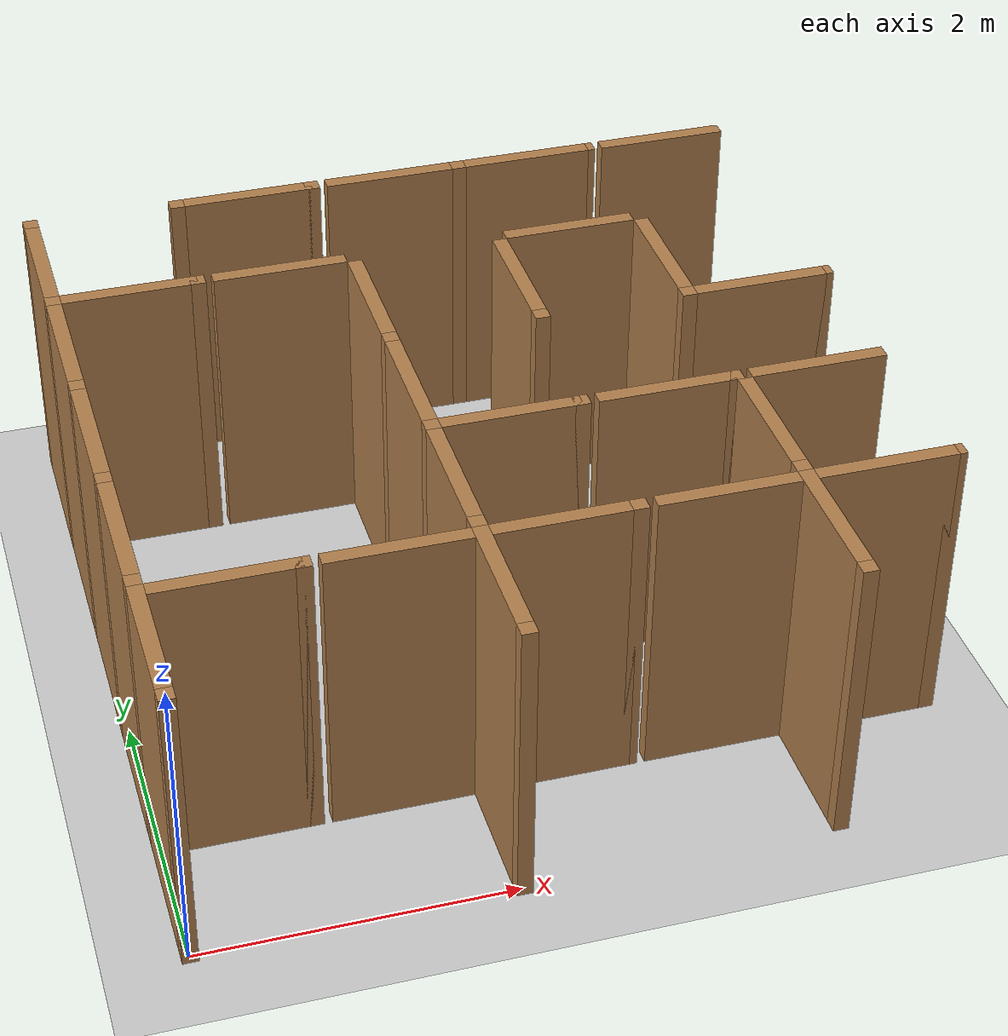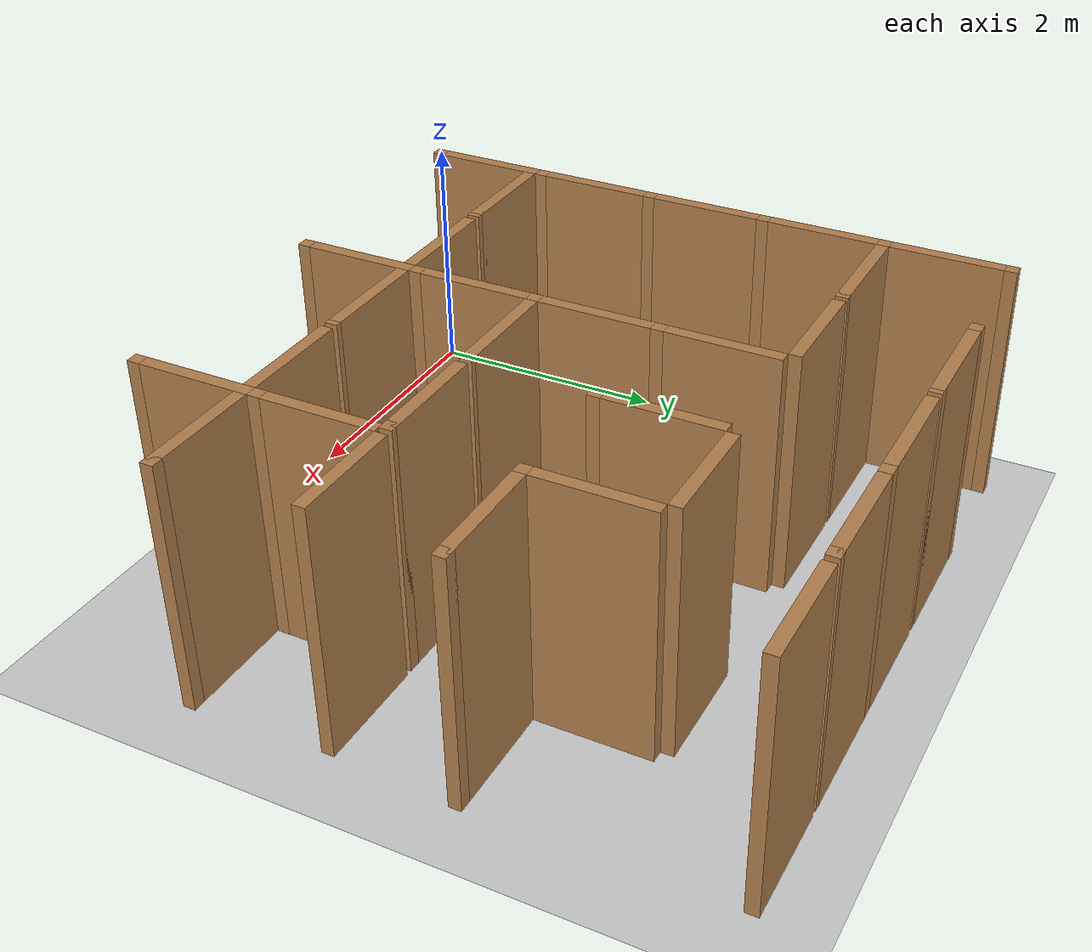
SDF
<sdf version="1.6">
 <world name="default">
  <include><uri>model://sun</uri></include>
  <model name="ground_plane">
   <static>true</static>
   <link name="link">
    <collision name="collision"><geometry><plane><size>12.0 12.0</size></plane></geometry></collision>
    <visual name="visual">
     <cast_shadows>false</cast_shadows>
     <geometry><plane><size>12.0 12.0</size></plane></geometry>
     <material>
      <script><uri>file://media/materials/scripts/gazebo.material</uri><name>Gazebo/Grey</name></script>
     </material>
    </visual>
   </link>
   <pose>6.0 6.0 0 0 0 0</pose>
  </model>
  <model name="vwall_0_0">
   <pose>0.0 0.5 1.0 0 0 0</pose>
   <link name="link">
    <collision name="collision"><geometry><box><size>0.1 0.9 2</size></box></geometry></collision>
    <visual name="visual">
     <geometry><box><size>0.1 0.9 2</size></box></geometry>
     <material>
      <script><uri>file://media/materials/scripts/gazebo.material</uri><name>Gazebo/Wood</name></script>
     </material>
    </visual>
   </link>
  </model>
  <model name="joint_0.0_0.0">
   <pose>0.0 0.0 1.0 0 0 0</pose>
   <link name="link">
    <collision name="collision"><geometry><box><size>0.1 0.1 2</size></box></geometry></collision>
    <visual name="visual">
     <geometry><box><size>0.1 0.1 2</size></box></geometry>
     <material>
      <script><uri>file://media/materials/scripts/gazebo.material</uri><name>Gazebo/Wood</name></script>
     </material>
    </visual>
   </link>
  </model>
  <model name="vwall_0_2">
   <pose>2.0 0.5 1.0 0 0 0</pose>
   <link name="link">
    <collision name="collision"><geometry><box><size>0.1 0.9 2</size></box></geometry></collision>
    <visual name="visual">
     <geometry><box><size>0.1 0.9 2</size></box></geometry>
     <material>
      <script><uri>file://media/materials/scripts/gazebo.material</uri><name>Gazebo/Wood</name></script>
     </material>
    </visual>
   </link>
  </model>
  <model name="joint_2.0_0.0">
   <pose>2.0 0.0 1.0 0 0 0</pose>
   <link name="link">
    <collision name="collision"><geometry><box><size>0.1 0.1 2</size></box></geometry></collision>
    <visual name="visual">
     <geometry><box><size>0.1 0.1 2</size></box></geometry>
     <material>
      <script><uri>file://media/materials/scripts/gazebo.material</uri><name>Gazebo/Wood</name></script>
     </material>
    </visual>
   </link>
  </model>
  <model name="vwall_0_4">
   <pose>4.0 0.5 1.0 0 0 0</pose>
   <link name="link">
    <collision name="collision"><geometry><box><size>0.1 0.9 2</size></box></geometry></collision>
    <visual name="visual">
     <geometry><box><size>0.1 0.9 2</size></box></geometry>
     <material>
      <script><uri>file://media/materials/scripts/gazebo.material</uri><name>Gazebo/Wood</name></script>
     </material>
    </visual>
   </link>
  </model>
  <model name="joint_4.0_0.0">
   <pose>4.0 0.0 1.0 0 0 0</pose>
   <link name="link">
    <collision name="collision"><geometry><box><size>0.1 0.1 2</size></box></geometry></collision>
    <visual name="visual">
     <geometry><box><size>0.1 0.1 2</size></box></geometry>
     <material>
      <script><uri>file://media/materials/scripts/gazebo.material</uri><name>Gazebo/Wood</name></script>
     </material>
    </visual>
   </link>
  </model>
  <model name="vwall_1_0">
   <pose>0.0 1.5 1.0 0 0 0</pose>
   <link name="link">
    <collision name="collision"><geometry><box><size>0.1 0.9 2</size></box></geometry></collision>
    <visual name="visual">
     <geometry><box><size>0.1 0.9 2</size></box></geometry>
     <material>
      <script><uri>file://media/materials/scripts/gazebo.material</uri><name>Gazebo/Wood</name></script>
     </material>
    </visual>
   </link>
  </model>
  <model name="joint_0.0_1.0">
   <pose>0.0 1.0 1.0 0 0 0</pose>
   <link name="link">
    <collision name="collision"><geometry><box><size>0.1 0.1 2</size></box></geometry></collision>
    <visual name="visual">
     <geometry><box><size>0.1 0.1 2</size></box></geometry>
     <material>
      <script><uri>file://media/materials/scripts/gazebo.material</uri><name>Gazebo/Wood</name></script>
     </material>
    </visual>
   </link>
  </model>
  <model name="vwall_1_2">
   <pose>2.0 1.5 1.0 0 0 0</pose>
   <link name="link">
    <collision name="collision"><geometry><box><size>0.1 0.9 2</size></box></geometry></collision>
    <visual name="visual">
     <geometry><box><size>0.1 0.9 2</size></box></geometry>
     <material>
      <script><uri>file://media/materials/scripts/gazebo.material</uri><name>Gazebo/Wood</name></script>
     </material>
    </visual>
   </link>
  </model>
  <model name="joint_2.0_1.0">
   <pose>2.0 1.0 1.0 0 0 0</pose>
   <link name="link">
    <collision name="collision"><geometry><box><size>0.1 0.1 2</size></box></geometry></collision>
    <visual name="visual">
     <geometry><box><size>0.1 0.1 2</size></box></geometry>
     <material>
      <script><uri>file://media/materials/scripts/gazebo.material</uri><name>Gazebo/Wood</name></script>
     </material>
    </visual>
   </link>
  </model>
  <model name="vwall_1_4">
   <pose>4.0 1.5 1.0 0 0 0</pose>
   <link name="link">
    <collision name="collision"><geometry><box><size>0.1 0.9 2</size></box></geometry></collision>
    <visual name="visual">
     <geometry><box><size>0.1 0.9 2</size></box></geometry>
     <material>
      <script><uri>file://media/materials/scripts/gazebo.material</uri><name>Gazebo/Wood</name></script>
     </material>
    </visual>
   </link>
  </model>
  <model name="joint_4.0_1.0">
   <pose>4.0 1.0 1.0 0 0 0</pose>
   <link name="link">
    <collision name="collision"><geometry><box><size>0.1 0.1 2</size></box></geometry></collision>
    <visual name="visual">
     <geometry><box><size>0.1 0.1 2</size></box></geometry>
     <material>
      <script><uri>file://media/materials/scripts/gazebo.material</uri><name>Gazebo/Wood</name></script>
     </material>
    </visual>
   </link>
  </model>
  <model name="vwall_2_0">
   <pose>0.0 2.5 1.0 0 0 0</pose>
   <link name="link">
    <collision name="collision"><geometry><box><size>0.1 0.9 2</size></box></geometry></collision>
    <visual name="visual">
     <geometry><box><size>0.1 0.9 2</size></box></geometry>
     <material>
      <script><uri>file://media/materials/scripts/gazebo.material</uri><name>Gazebo/Wood</name></script>
     </material>
    </visual>
   </link>
  </model>
  <model name="joint_0.0_2.0">
   <pose>0.0 2.0 1.0 0 0 0</pose>
   <link name="link">
    <collision name="collision"><geometry><box><size>0.1 0.1 2</size></box></geometry></collision>
    <visual name="visual">
     <geometry><box><size>0.1 0.1 2</size></box></geometry>
     <material>
      <script><uri>file://media/materials/scripts/gazebo.material</uri><name>Gazebo/Wood</name></script>
     </material>
    </visual>
   </link>
  </model>
  <model name="vwall_2_2">
   <pose>2.0 2.5 1.0 0 0 0</pose>
   <link name="link">
    <collision name="collision"><geometry><box><size>0.1 0.9 2</size></box></geometry></collision>
    <visual name="visual">
     <geometry><box><size>0.1 0.9 2</size></box></geometry>
     <material>
      <script><uri>file://media/materials/scripts/gazebo.material</uri><name>Gazebo/Wood</name></script>
     </material>
    </visual>
   </link>
  </model>
  <model name="joint_2.0_2.0">
   <pose>2.0 2.0 1.0 0 0 0</pose>
   <link name="link">
    <collision name="collision"><geometry><box><size>0.1 0.1 2</size></box></geometry></collision>
    <visual name="visual">
     <geometry><box><size>0.1 0.1 2</size></box></geometry>
     <material>
      <script><uri>file://media/materials/scripts/gazebo.material</uri><name>Gazebo/Wood</name></script>
     </material>
    </visual>
   </link>
  </model>
  <model name="vwall_3_0">
   <pose>0.0 3.5 1.0 0 0 0</pose>
   <link name="link">
    <collision name="collision"><geometry><box><size>0.1 0.9 2</size></box></geometry></collision>
    <visual name="visual">
     <geometry><box><size>0.1 0.9 2</size></box></geometry>
     <material>
      <script><uri>file://media/materials/scripts/gazebo.material</uri><name>Gazebo/Wood</name></script>
     </material>
    </visual>
   </link>
  </model>
  <model name="joint_0.0_3.0">
   <pose>0.0 3.0 1.0 0 0 0</pose>
   <link name="link">
    <collision name="collision"><geometry><box><size>0.1 0.1 2</size></box></geometry></collision>
    <visual name="visual">
     <geometry><box><size>0.1 0.1 2</size></box></geometry>
     <material>
      <script><uri>file://media/materials/scripts/gazebo.material</uri><name>Gazebo/Wood</name></script>
     </material>
    </visual>
   </link>
  </model>
  <model name="vwall_3_2">
   <pose>2.0 3.5 1.0 0 0 0</pose>
   <link name="link">
    <collision name="collision"><geometry><box><size>0.1 0.9 2</size></box></geometry></collision>
    <visual name="visual">
     <geometry><box><size>0.1 0.9 2</size></box></geometry>
     <material>
      <script><uri>file://media/materials/scripts/gazebo.material</uri><name>Gazebo/Wood</name></script>
     </material>
    </visual>
   </link>
  </model>
  <model name="joint_2.0_3.0">
   <pose>2.0 3.0 1.0 0 0 0</pose>
   <link name="link">
    <collision name="collision"><geometry><box><size>0.1 0.1 2</size></box></geometry></collision>
    <visual name="visual">
     <geometry><box><size>0.1 0.1 2</size></box></geometry>
     <material>
      <script><uri>file://media/materials/scripts/gazebo.material</uri><name>Gazebo/Wood</name></script>
     </material>
    </visual>
   </link>
  </model>
  <model name="vwall_3_3">
   <pose>3.0 3.5 1.0 0 0 0</pose>
   <link name="link">
    <collision name="collision"><geometry><box><size>0.1 0.9 2</size></box></geometry></collision>
    <visual name="visual">
     <geometry><box><size>0.1 0.9 2</size></box></geometry>
     <material>
      <script><uri>file://media/materials/scripts/gazebo.material</uri><name>Gazebo/Wood</name></script>
     </material>
    </visual>
   </link>
  </model>
  <model name="joint_3.0_3.0">
   <pose>3.0 3.0 1.0 0 0 0</pose>
   <link name="link">
    <collision name="collision"><geometry><box><size>0.1 0.1 2</size></box></geometry></collision>
    <visual name="visual">
     <geometry><box><size>0.1 0.1 2</size></box></geometry>
     <material>
      <script><uri>file://media/materials/scripts/gazebo.material</uri><name>Gazebo/Wood</name></script>
     </material>
    </visual>
   </link>
  </model>
  <model name="vwall_3_4">
   <pose>4.0 3.5 1.0 0 0 0</pose>
   <link name="link">
    <collision name="collision"><geometry><box><size>0.1 0.9 2</size></box></geometry></collision>
    <visual name="visual">
     <geometry><box><size>0.1 0.9 2</size></box></geometry>
     <material>
      <script><uri>file://media/materials/scripts/gazebo.material</uri><name>Gazebo/Wood</name></script>
     </material>
    </visual>
   </link>
  </model>
  <model name="joint_4.0_3.0">
   <pose>4.0 3.0 1.0 0 0 0</pose>
   <link name="link">
    <collision name="collision"><geometry><box><size>0.1 0.1 2</size></box></geometry></collision>
    <visual name="visual">
     <geometry><box><size>0.1 0.1 2</size></box></geometry>
     <material>
      <script><uri>file://media/materials/scripts/gazebo.material</uri><name>Gazebo/Wood</name></script>
     </material>
    </visual>
   </link>
  </model>
  <model name="vwall_4_0">
   <pose>0.0 4.5 1.0 0 0 0</pose>
   <link name="link">
    <collision name="collision"><geometry><box><size>0.1 0.9 2</size></box></geometry></collision>
    <visual name="visual">
     <geometry><box><size>0.1 0.9 2</size></box></geometry>
     <material>
      <script><uri>file://media/materials/scripts/gazebo.material</uri><name>Gazebo/Wood</name></script>
     </material>
    </visual>
   </link>
  </model>
  <model name="joint_0.0_4.0">
   <pose>0.0 4.0 1.0 0 0 0</pose>
   <link name="link">
    <collision name="collision"><geometry><box><size>0.1 0.1 2</size></box></geometry></collision>
    <visual name="visual">
     <geometry><box><size>0.1 0.1 2</size></box></geometry>
     <material>
      <script><uri>file://media/materials/scripts/gazebo.material</uri><name>Gazebo/Wood</name></script>
     </material>
    </visual>
   </link>
  </model>
  <model name="joint_0.0_5.0">
   <pose>0.0 5.0 1.0 0 0 0</pose>
   <link name="link">
    <collision name="collision"><geometry><box><size>0.1 0.1 2</size></box></geometry></collision>
    <visual name="visual">
     <geometry><box><size>0.1 0.1 2</size></box></geometry>
     <material>
      <script><uri>file://media/materials/scripts/gazebo.material</uri><name>Gazebo/Wood</name></script>
     </material>
    </visual>
   </link>
  </model>
  <model name="joint_1.0_5.0">
   <pose>1.0 5.0 1.0 0 0 0</pose>
   <link name="link">
    <collision name="collision"><geometry><box><size>0.1 0.1 2</size></box></geometry></collision>
    <visual name="visual">
     <geometry><box><size>0.1 0.1 2</size></box></geometry>
     <material>
      <script><uri>file://media/materials/scripts/gazebo.material</uri><name>Gazebo/Wood</name></script>
     </material>
    </visual>
   </link>
  </model>
  <model name="joint_3.0_5.0">
   <pose>3.0 5.0 1.0 0 0 0</pose>
   <link name="link">
    <collision name="collision"><geometry><box><size>0.1 0.1 2</size></box></geometry></collision>
    <visual name="visual">
     <geometry><box><size>0.1 0.1 2</size></box></geometry>
     <material>
      <script><uri>file://media/materials/scripts/gazebo.material</uri><name>Gazebo/Wood</name></script>
     </material>
    </visual>
   </link>
  </model>
  <model name="hwall_0_0">
   <pose>0.5 0.9 1.0 0 0 0</pose>
   <link name="link">
    <collision name="collision"><geometry><box><size>0.9 0.1 2</size></box></geometry></collision>
    <visual name="visual">
     <geometry><box><size>0.9 0.1 2</size></box></geometry>
     <material>
      <script><uri>file://media/materials/scripts/gazebo.material</uri><name>Gazebo/Wood</name></script>
     </material>
    </visual>
   </link>
  </model>
  <model name="joint_0.95_0.9">
   <pose>0.95 0.9 1.0 0 0 0</pose>
   <link name="link">
    <collision name="collision"><geometry><box><size>0.1 0.1 2</size></box></geometry></collision>
    <visual name="visual">
     <geometry><box><size>0.1 0.1 2</size></box></geometry>
     <material>
      <script><uri>file://media/materials/scripts/gazebo.material</uri><name>Gazebo/Wood</name></script>
     </material>
    </visual>
   </link>
  </model>
  <model name="hwall_0_1">
   <pose>1.5 0.9 1.0 0 0 0</pose>
   <link name="link">
    <collision name="collision"><geometry><box><size>0.9 0.1 2</size></box></geometry></collision>
    <visual name="visual">
     <geometry><box><size>0.9 0.1 2</size></box></geometry>
     <material>
      <script><uri>file://media/materials/scripts/gazebo.material</uri><name>Gazebo/Wood</name></script>
     </material>
    </visual>
   </link>
  </model>
  <model name="hwall_0_2">
   <pose>2.5 0.9 1.0 0 0 0</pose>
   <link name="link">
    <collision name="collision"><geometry><box><size>0.9 0.1 2</size></box></geometry></collision>
    <visual name="visual">
     <geometry><box><size>0.9 0.1 2</size></box></geometry>
     <material>
      <script><uri>file://media/materials/scripts/gazebo.material</uri><name>Gazebo/Wood</name></script>
     </material>
    </visual>
   </link>
  </model>
  <model name="joint_2.95_0.9">
   <pose>2.95 0.9 1.0 0 0 0</pose>
   <link name="link">
    <collision name="collision"><geometry><box><size>0.1 0.1 2</size></box></geometry></collision>
    <visual name="visual">
     <geometry><box><size>0.1 0.1 2</size></box></geometry>
     <material>
      <script><uri>file://media/materials/scripts/gazebo.material</uri><name>Gazebo/Wood</name></script>
     </material>
    </visual>
   </link>
  </model>
  <model name="hwall_0_3">
   <pose>3.5 0.9 1.0 0 0 0</pose>
   <link name="link">
    <collision name="collision"><geometry><box><size>0.9 0.1 2</size></box></geometry></collision>
    <visual name="visual">
     <geometry><box><size>0.9 0.1 2</size></box></geometry>
     <material>
      <script><uri>file://media/materials/scripts/gazebo.material</uri><name>Gazebo/Wood</name></script>
     </material>
    </visual>
   </link>
  </model>
  <model name="hwall_0_4">
   <pose>4.5 0.9 1.0 0 0 0</pose>
   <link name="link">
    <collision name="collision"><geometry><box><size>0.9 0.1 2</size></box></geometry></collision>
    <visual name="visual">
     <geometry><box><size>0.9 0.1 2</size></box></geometry>
     <material>
      <script><uri>file://media/materials/scripts/gazebo.material</uri><name>Gazebo/Wood</name></script>
     </material>
    </visual>
   </link>
  </model>
  <model name="joint_4.95_0.9">
   <pose>4.95 0.9 1.0 0 0 0</pose>
   <link name="link">
    <collision name="collision"><geometry><box><size>0.1 0.1 2</size></box></geometry></collision>
    <visual name="visual">
     <geometry><box><size>0.1 0.1 2</size></box></geometry>
     <material>
      <script><uri>file://media/materials/scripts/gazebo.material</uri><name>Gazebo/Wood</name></script>
     </material>
    </visual>
   </link>
  </model>
  <model name="hwall_2_2">
   <pose>2.5 2.0 1.0 0 0 0</pose>
   <link name="link">
    <collision name="collision"><geometry><box><size>0.9 0.1 2</size></box></geometry></collision>
    <visual name="visual">
     <geometry><box><size>0.9 0.1 2</size></box></geometry>
     <material>
      <script><uri>file://media/materials/scripts/gazebo.material</uri><name>Gazebo/Wood</name></script>
     </material>
    </visual>
   </link>
  </model>
  <model name="joint_2.95_2.0">
   <pose>2.95 2.0 1.0 0 0 0</pose>
   <link name="link">
    <collision name="collision"><geometry><box><size>0.1 0.1 2</size></box></geometry></collision>
    <visual name="visual">
     <geometry><box><size>0.1 0.1 2</size></box></geometry>
     <material>
      <script><uri>file://media/materials/scripts/gazebo.material</uri><name>Gazebo/Wood</name></script>
     </material>
    </visual>
   </link>
  </model>
  <model name="hwall_2_3">
   <pose>3.5 2.0 1.0 0 0 0</pose>
   <link name="link">
    <collision name="collision"><geometry><box><size>0.9 0.1 2</size></box></geometry></collision>
    <visual name="visual">
     <geometry><box><size>0.9 0.1 2</size></box></geometry>
     <material>
      <script><uri>file://media/materials/scripts/gazebo.material</uri><name>Gazebo/Wood</name></script>
     </material>
    </visual>
   </link>
  </model>
  <model name="joint_3.95_2.0">
   <pose>3.95 2.0 1.0 0 0 0</pose>
   <link name="link">
    <collision name="collision"><geometry><box><size>0.1 0.1 2</size></box></geometry></collision>
    <visual name="visual">
     <geometry><box><size>0.1 0.1 2</size></box></geometry>
     <material>
      <script><uri>file://media/materials/scripts/gazebo.material</uri><name>Gazebo/Wood</name></script>
     </material>
    </visual>
   </link>
  </model>
  <model name="hwall_2_4">
   <pose>4.5 2.0 1.0 0 0 0</pose>
   <link name="link">
    <collision name="collision"><geometry><box><size>0.9 0.1 2</size></box></geometry></collision>
    <visual name="visual">
     <geometry><box><size>0.9 0.1 2</size></box></geometry>
     <material>
      <script><uri>file://media/materials/scripts/gazebo.material</uri><name>Gazebo/Wood</name></script>
     </material>
    </visual>
   </link>
  </model>
  <model name="hwall_3_4">
   <pose>4.5 3.0 1.0 0 0 0</pose>
   <link name="link">
    <collision name="collision"><geometry><box><size>0.9 0.1 2</size></box></geometry></collision>
    <visual name="visual">
     <geometry><box><size>0.9 0.1 2</size></box></geometry>
     <material>
      <script><uri>file://media/materials/scripts/gazebo.material</uri><name>Gazebo/Wood</name></script>
     </material>
    </visual>
   </link>
  </model>
  <model name="joint_4.95_3.0">
   <pose>4.95 3.0 1.0 0 0 0</pose>
   <link name="link">
    <collision name="collision"><geometry><box><size>0.1 0.1 2</size></box></geometry></collision>
    <visual name="visual">
     <geometry><box><size>0.1 0.1 2</size></box></geometry>
     <material>
      <script><uri>file://media/materials/scripts/gazebo.material</uri><name>Gazebo/Wood</name></script>
     </material>
    </visual>
   </link>
  </model>
  <model name="hwall_4_0">
   <pose>0.5 4.0 1.0 0 0 0</pose>
   <link name="link">
    <collision name="collision"><geometry><box><size>0.9 0.1 2</size></box></geometry></collision>
    <visual name="visual">
     <geometry><box><size>0.9 0.1 2</size></box></geometry>
     <material>
      <script><uri>file://media/materials/scripts/gazebo.material</uri><name>Gazebo/Wood</name></script>
     </material>
    </visual>
   </link>
  </model>
  <model name="joint_0.95_4.0">
   <pose>0.95 4.0 1.0 0 0 0</pose>
   <link name="link">
    <collision name="collision"><geometry><box><size>0.1 0.1 2</size></box></geometry></collision>
    <visual name="visual">
     <geometry><box><size>0.1 0.1 2</size></box></geometry>
     <material>
      <script><uri>file://media/materials/scripts/gazebo.material</uri><name>Gazebo/Wood</name></script>
     </material>
    </visual>
   </link>
  </model>
  <model name="hwall_4_1">
   <pose>1.5 4.0 1.0 0 0 0</pose>
   <link name="link">
    <collision name="collision"><geometry><box><size>0.9 0.1 2</size></box></geometry></collision>
    <visual name="visual">
     <geometry><box><size>0.9 0.1 2</size></box></geometry>
     <material>
      <script><uri>file://media/materials/scripts/gazebo.material</uri><name>Gazebo/Wood</name></script>
     </material>
    </visual>
   </link>
  </model>
  <model name="hwall_4_3">
   <pose>3.5 4.0 1.0 0 0 0</pose>
   <link name="link">
    <collision name="collision"><geometry><box><size>0.9 0.1 2</size></box></geometry></collision>
    <visual name="visual">
     <geometry><box><size>0.9 0.1 2</size></box></geometry>
     <material>
      <script><uri>file://media/materials/scripts/gazebo.material</uri><name>Gazebo/Wood</name></script>
     </material>
    </visual>
   </link>
  </model>
  <model name="hwall_5_1">
   <pose>1.5 5.0 1.0 0 0 0</pose>
   <link name="link">
    <collision name="collision"><geometry><box><size>0.9 0.1 2</size></box></geometry></collision>
    <visual name="visual">
     <geometry><box><size>0.9 0.1 2</size></box></geometry>
     <material>
      <script><uri>file://media/materials/scripts/gazebo.material</uri><name>Gazebo/Wood</name></script>
     </material>
    </visual>
   </link>
  </model>
  <model name="joint_1.95_5.0">
   <pose>1.95 5.0 1.0 0 0 0</pose>
   <link name="link">
    <collision name="collision"><geometry><box><size>0.1 0.1 2</size></box></geometry></collision>
    <visual name="visual">
     <geometry><box><size>0.1 0.1 2</size></box></geometry>
     <material>
      <script><uri>file://media/materials/scripts/gazebo.material</uri><name>Gazebo/Wood</name></script>
     </material>
    </visual>
   </link>
  </model>
  <model name="hwall_5_2">
   <pose>2.5 5.0 1.0 0 0 0</pose>
   <link name="link">
    <collision name="collision"><geometry><box><size>0.9 0.1 2</size></box></geometry></collision>
    <visual name="visual">
     <geometry><box><size>0.9 0.1 2</size></box></geometry>
     <material>
      <script><uri>file://media/materials/scripts/gazebo.material</uri><name>Gazebo/Wood</name></script>
     </material>
    </visual>
   </link>
  </model>
  <model name="hwall_5_3">
   <pose>3.5 5.0 1.0 0 0 0</pose>
   <link name="link">
    <collision name="collision"><geometry><box><size>0.9 0.1 2</size></box></geometry></collision>
    <visual name="visual">
     <geometry><box><size>0.9 0.1 2</size></box></geometry>
     <material>
      <script><uri>file://media/materials/scripts/gazebo.material</uri><name>Gazebo/Wood</name></script>
     </material>
    </visual>
   </link>
  </model>
  <model name="joint_3.95_5.0">
   <pose>3.95 5.0 1.0 0 0 0</pose>
   <link name="link">
    <collision name="collision"><geometry><box><size>0.1 0.1 2</size></box></geometry></collision>
    <visual name="visual">
     <geometry><box><size>0.1 0.1 2</size></box></geometry>
     <material>
      <script><uri>file://media/materials/scripts/gazebo.material</uri><name>Gazebo/Wood</name></script>
     </material>
    </visual>
   </link>
  </model>
  <model name="hwall_5_4">
   <pose>4.5 5.0 1.0 0 0 0</pose>
   <link name="link">
    <collision name="collision"><geometry><box><size>0.9 0.1 2</size></box></geometry></collision>
    <visual name="visual">
     <geometry><box><size>0.9 0.1 2</size></box></geometry>
     <material>
      <script><uri>file://media/materials/scripts/gazebo.material</uri><name>Gazebo/Wood</name></script>
     </material>
    </visual>
   </link>
  </model>
 </world>
</sdf>
